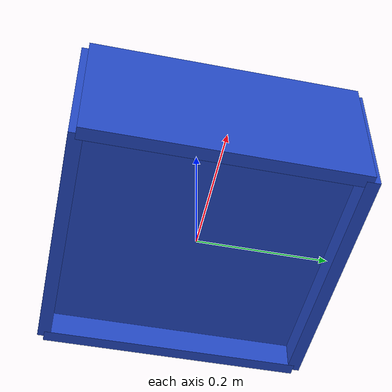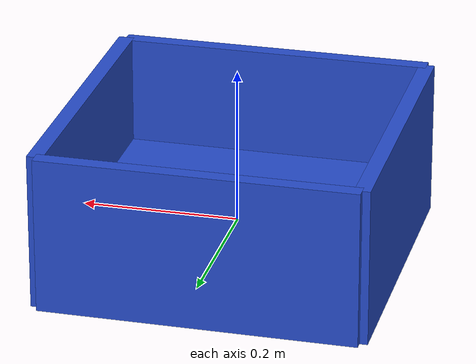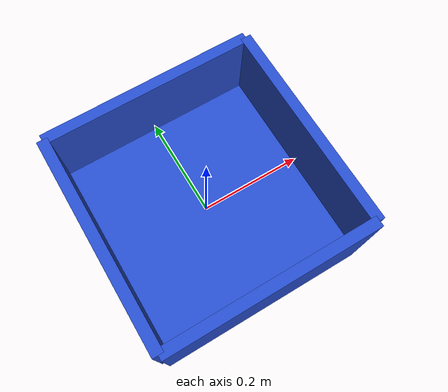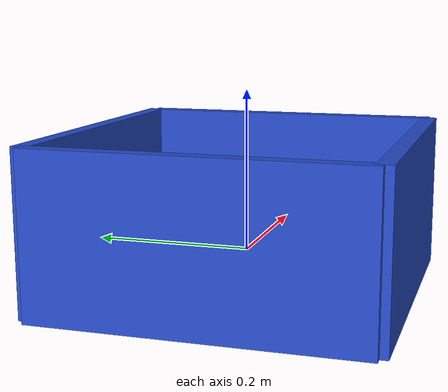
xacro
<?xml version='1.0'?>
<robot name ='bin'>

<link name ="bottom">
  <collision>
    <origin xyz="0 0 0" rpy="0 0 0"/>
    <geometry>
      <box size="0.4 0.4 0.02"/>
    </geometry>
  </collision>

  <visual>
    <origin xyz="0 0 0" rpy="0 0 0"/>
    <geometry>
      <box size="0.4 0.4 0.02"/>
    </geometry>
  </visual>

  <inertial>
    <origin xyz="0 0 0" rpy="0 0 0" />
    <mass value="0.05" />
    <inertia
      ixx="0.001" ixy="0.0"  ixz="0.0"
      iyy="0.001" iyz="0.0"
      izz="0.001" />
  </inertial>
</link>

<joint name = "left_wall" type = "fixed">
  <parent link="bottom"/>
  <child link = "left"/>
</joint>

<link name = "left">
  <collision>
    <origin xyz="-0.2 0 0.05" rpy="0 0 0"/>
    <geometry>
      <box size="0.02 0.4 0.2"/>
    </geometry>
  </collision>

  <visual>
    <origin xyz="-0.2 0 0.05" rpy="0 0 0"/>
    <geometry>
      <box size="0.02 0.4 0.2"/>
    </geometry>
  </visual>

  <inertial>
    <origin xyz="-0.2 0 0.05" rpy="0 0 0" />
    <mass value="0.05" />
    <inertia
      ixx="0.001" ixy="0.0"  ixz="0.0"
      iyy="0.001" iyz="0.0"
      izz="0.001" />
  </inertial>
</link>

<joint name = "right_wall" type = "fixed">
  <parent link="bottom"/>
  <child link = "right"/>
</joint>

<link name="right">
  <collision>
    <origin xyz="0.2 0 0.05" rpy="0 0 0"/>
    <geometry>
      <box size="0.02 0.4 0.2"/>
    </geometry>
  </collision>

  <visual>
    <origin xyz="0.2 0 0.05" rpy="0 0 0"/>
    <geometry>
      <box size="0.02 0.4 0.2"/>
    </geometry>
  </visual>

  <inertial>
    <origin xyz="0.2 0 0.05" rpy="0 0 0" />
    <mass value="0.05" />
    <inertia
      ixx="0.001" ixy="0.0"  ixz="0.0"
      iyy="0.001" iyz="0.0"
      izz="0.001" />
  </inertial>
</link>

<joint name = "back_wall" type = "fixed">
  <parent link="bottom"/>
  <child link = "back"/>
</joint>

<link name="back">
  <collision>
    <origin xyz="0 0.2 0.05" rpy="0 0 0"/>
    <geometry>
      <box size="0.4 0.02 0.2"/>
    </geometry>
  </collision>

  <visual>
    <origin xyz="0 0.2 0.05" rpy="0 0 0"/>
    <geometry>
      <box size="0.4 0.02 0.2"/>
    </geometry>
  </visual>

  <inertial>
    <origin xyz="0 0.2 0.05" rpy="0 0 0" />
    <mass value="0.05" />
    <inertia
      ixx="0.001" ixy="0.0"  ixz="0.0"
      iyy="0.001" iyz="0.0"
      izz="0.001" />
  </inertial>
</link>

<joint name = "front_wall" type = "fixed">
  <parent link="bottom"/>
  <child link = "front"/>
</joint>

<link name="front">
  <collision>
    <origin xyz="0 -0.2 0.05" rpy= "0 0 0"/>
    <geometry>
      <box size="0.4 0.02 0.2"/>
    </geometry>
  </collision>

  <visual>
    <origin xyz="0 -0.2 0.05" rpy="0 0 0"/>
    <geometry>
      <box size="0.4 0.02 0.2"/>
    </geometry>
  </visual>

  <inertial>
    <origin xyz="0 -0.2 0.05" rpy="0 0 0"/>
    <mass value="0.05" />
    <inertia
      ixx="0.001" ixy="0.0"  ixz="0.0"
      iyy="0.001" iyz="0.0"
      izz="0.001" />
  </inertial>
</link>

<gazebo reference="bottom">
  <mu1>10</mu1>
  <mu2>10</mu2>
  <material>Gazebo/Blue</material>
</gazebo>

<gazebo reference="right">
  <mu1>10</mu1>
  <mu2>10</mu2>
  <material>Gazebo/Blue</material>
</gazebo>

<gazebo reference="left">
  <mu1>10</mu1>
  <mu2>10</mu2>
  <material>Gazebo/Blue</material>
</gazebo>

<gazebo reference="back">
  <mu1>10</mu1>
  <mu2>10</mu2>
  <material>Gazebo/Blue</material>
</gazebo>

<gazebo reference="front">
  <mu1>10</mu1>
  <mu2>10</mu2>
  <material>Gazebo/Blue</material>
</gazebo>

</robot>
